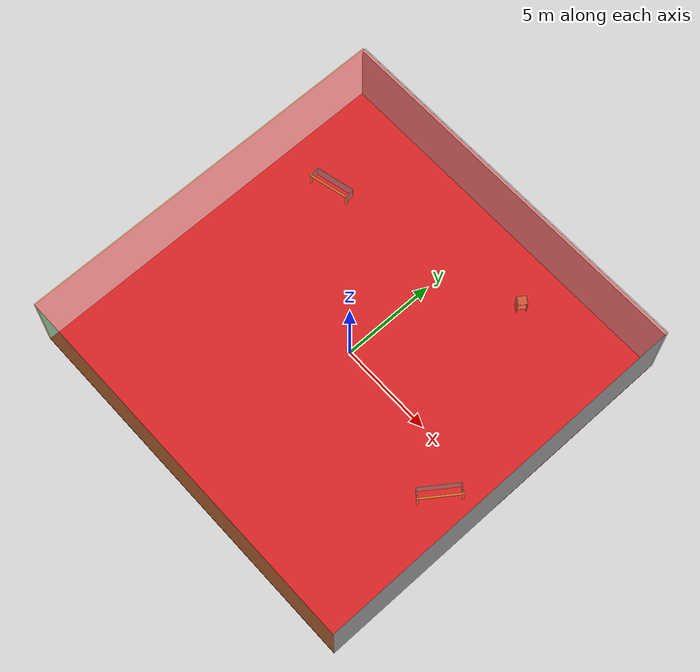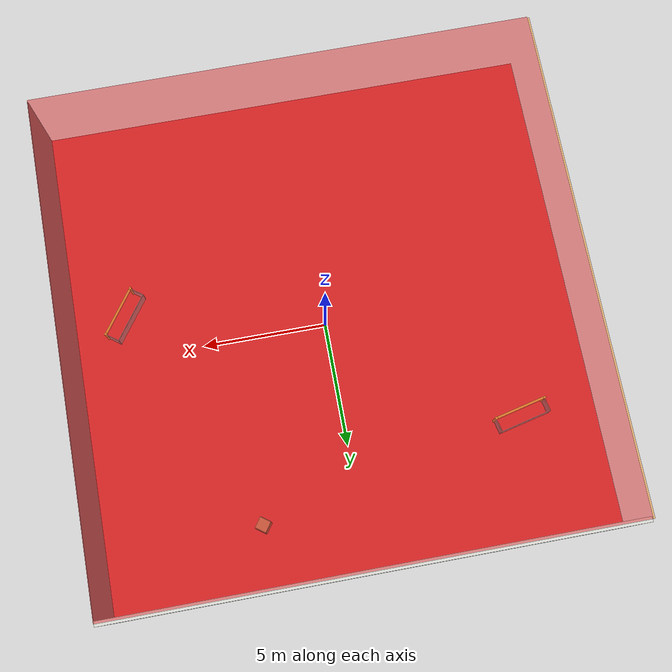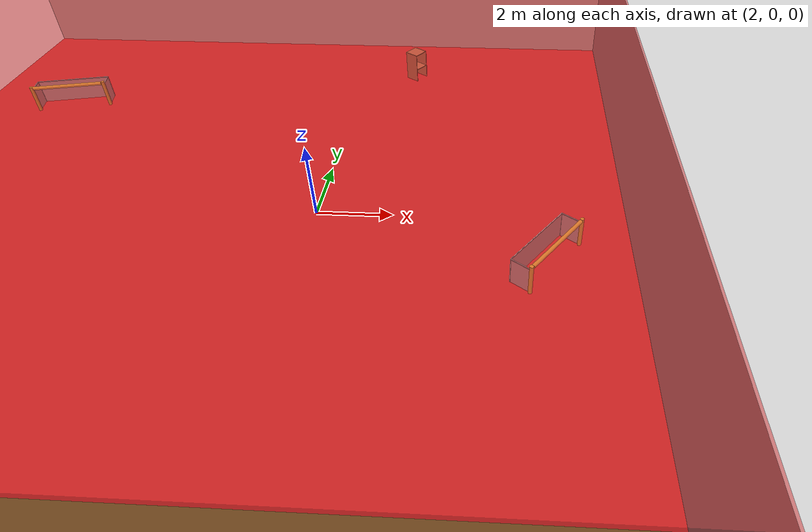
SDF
<sdf version="1.4">
 <world name="default">
  <physics type="ode">
   <max_step_size>0.001</max_step_size>
   <real_time_factor>1</real_time_factor>
   <real_time_update_rate>1000</real_time_update_rate>
   <gravity>0 0 -9.8</gravity>
  </physics>
  <scene><ambient>0.4 0.4 0.4 1</ambient><background>0.7 0.7 0.7 1</background><shadows>1</shadows></scene>
  <model name="Surrounding">
   <static>1</static>
   <link name="Ceiling">
    <collision name="Ceiling_Collision"><geometry><box><size>20 20 0.1</size></box></geometry></collision>
    <visual name="Ceiling_Visual">
     <geometry><box><size>20 20 0.1</size></box></geometry>
     <material>
      <script><uri>file://media/materials/scripts/gazebo.material</uri><name>Gazebo/RedTransparent</name></script>
     </material>
    </visual>
    <pose>0 0 4.05 0 0 0</pose>
   </link>
   <link name="Wall_South">
    <collision name="Wall_South_Collision">
     <geometry><box><size>20 0 4</size></box></geometry>
     <pose>0 0 2 0 -0 0</pose>
    </collision>
    <visual name="Wall_South_Visual">
     <pose>0 0 2 0 -0 0</pose>
     <geometry><box><size>20 0 4</size></box></geometry>
     <material>
      <script><uri>file://media/materials/scripts/gazebo.material</uri><name>Gazebo/GreenTransparent</name></script>
     </material>
    </visual>
    <velocity_decay><linear>0</linear><angular>0</angular></velocity_decay>
    <pose>0 -10 0 0 -0 0</pose>
   </link>
   <link name="Wall_East">
    <collision name="Wall_21_Collision">
     <geometry><box><size>20 0 4</size></box></geometry>
     <pose>0 0 2 0 -0 0</pose>
    </collision>
    <visual name="Wall_21_Visual">
     <pose>0 0 2 0 -0 0</pose>
     <geometry><box><size>20 0 4</size></box></geometry>
     <material>
      <script><uri>file://media/materials/scripts/gazebo.material</uri><name>Gazebo/CloudySky</name></script>
     </material>
    </visual>
    <velocity_decay><linear>0</linear><angular>0</angular></velocity_decay>
    <pose>10 0 0 0 -0 1.5708</pose>
   </link>
   <link name="Wall_North">
    <collision name="Wall_22_Collision">
     <geometry><box><size>20 0.2 4</size></box></geometry>
     <pose>0 0 2 0 -0 0</pose>
    </collision>
    <visual name="Wall_22_Visual">
     <pose>0 0 2 0 -0 0</pose>
     <geometry><box><size>20 0.2 4</size></box></geometry>
     <material>
      <script><uri>file://media/materials/scripts/gazebo.material</uri><name>Gazebo/CeilingTiled</name></script>
     </material>
    </visual>
    <velocity_decay><linear>0</linear><angular>0</angular></velocity_decay>
    <pose>0 10 0 0 -0 0</pose>
   </link>
   <link name="Wall_West">
    <collision name="Wall_23_Collision">
     <geometry><box><size>20 0.2 4</size></box></geometry>
     <pose>0 0 2 0 -0 0</pose>
    </collision>
    <visual name="Wall_23_Visual">
     <pose>0 0 2 0 -0 0</pose>
     <geometry><box><size>20 0.2 4</size></box></geometry>
     <material>
      <script>
       <uri>file://media/materials/scripts/gazebo.material</uri>
       <name>Gazebo/OrangeTransparent</name>
      </script>
     </material>
    </visual>
    <velocity_decay><linear>0</linear><angular>0</angular></velocity_decay>
    <pose>-10 0 0 0 0 -1.5708</pose>
   </link>
   <link name="Ground_link">
    <collision name="collision">
     <pose>0 0 .05 0 -0 0</pose>
     <geometry><box><size>20 20 0.1</size></box></geometry>
    </collision>
    <visual name="visual">
     <pose>0 0 .05 0 -0 0</pose>
     <geometry><box><size>20 20 0.1</size></box></geometry>
     <material>
      <script><uri>file://media/materials/scripts/gazebo.material</uri><name>Gazebo/RedGlow</name></script>
     </material>
    </visual>
   </link>
   <static>1</static>
  </model>
  <spherical_coordinates>
   <surface_model>EARTH_WGS84</surface_model>
   <latitude_deg>0</latitude_deg>
   <longitude_deg>0</longitude_deg>
   <elevation>0</elevation>
   <heading_deg>0</heading_deg>
  </spherical_coordinates>
  <light name="lightball_0" type="diffuse">
   <diffuse>0.8 0.8 0.8 1</diffuse>
   <specular>0.2 0.2 0.2 1</specular>
   <attenuation>
    <range>100</range>
    <constant>0.7</constant>
    <linear>0.01</linear>
    <quadratic>0.001</quadratic>
   </attenuation>
   <direction>-0.5 0.1 -0.9</direction>
   <pose>9.84119509532 -6.56863578652 2.29214710529 0 0 0</pose>
  </light>
  <light name="lightball_1" type="diffuse">
   <diffuse>0.8 0.8 0.8 1</diffuse>
   <specular>0.2 0.2 0.2 1</specular>
   <attenuation>
    <range>100</range>
    <constant>0.7</constant>
    <linear>0.01</linear>
    <quadratic>0.001</quadratic>
   </attenuation>
   <direction>-0.5 0.1 -0.9</direction>
   <pose>-6.23186001898 6.34792449829 1.1876546883 0 0 0</pose>
  </light>
  <light name="lightball_2" type="diffuse">
   <diffuse>0.8 0.8 0.8 1</diffuse>
   <specular>0.2 0.2 0.2 1</specular>
   <attenuation>
    <range>100</range>
    <constant>0.7</constant>
    <linear>0.01</linear>
    <quadratic>0.001</quadratic>
   </attenuation>
   <direction>-0.5 0.1 -0.9</direction>
   <pose>-0.0406130120697 -3.55373676123 3.30094477397 0 0 0</pose>
  </light>
  <light name="lightball_3" type="diffuse">
   <diffuse>0.8 0.8 0.8 1</diffuse>
   <specular>0.2 0.2 0.2 1</specular>
   <attenuation>
    <range>100</range>
    <constant>0.7</constant>
    <linear>0.01</linear>
    <quadratic>0.001</quadratic>
   </attenuation>
   <direction>-0.5 0.1 -0.9</direction>
   <pose>7.49738052268 -5.63074412783 3.13074431745 0 0 0</pose>
  </light>
  <light name="lightball_4" type="diffuse">
   <diffuse>0.8 0.8 0.8 1</diffuse>
   <specular>0.2 0.2 0.2 1</specular>
   <attenuation>
    <range>100</range>
    <constant>0.7</constant>
    <linear>0.01</linear>
    <quadratic>0.001</quadratic>
   </attenuation>
   <direction>-0.5 0.1 -0.9</direction>
   <pose>-8.05211015819 2.78523062314 2.61526026092 0 0 0</pose>
  </light>
  <light name="lightball_5" type="diffuse">
   <diffuse>0.8 0.8 0.8 1</diffuse>
   <specular>0.2 0.2 0.2 1</specular>
   <attenuation>
    <range>100</range>
    <constant>0.7</constant>
    <linear>0.01</linear>
    <quadratic>0.001</quadratic>
   </attenuation>
   <direction>-0.5 0.1 -0.9</direction>
   <pose>-4.10736213297 3.48760458864 1.54265892329 0 0 0</pose>
  </light>
  <light name="lightball_6" type="diffuse">
   <diffuse>0.8 0.8 0.8 1</diffuse>
   <specular>0.2 0.2 0.2 1</specular>
   <attenuation>
    <range>100</range>
    <constant>0.7</constant>
    <linear>0.01</linear>
    <quadratic>0.001</quadratic>
   </attenuation>
   <direction>-0.5 0.1 -0.9</direction>
   <pose>-7.95237083792 4.19197677723 3.31040302103 0 0 0</pose>
  </light>
  <light name="lightball_7" type="diffuse">
   <diffuse>0.8 0.8 0.8 1</diffuse>
   <specular>0.2 0.2 0.2 1</specular>
   <attenuation>
    <range>100</range>
    <constant>0.7</constant>
    <linear>0.01</linear>
    <quadratic>0.001</quadratic>
   </attenuation>
   <direction>-0.5 0.1 -0.9</direction>
   <pose>-8.4855727561 -9.3313468776 2.70848811343 0 0 0</pose>
  </light>
  <light name="lightball_8" type="diffuse">
   <diffuse>0.8 0.8 0.8 1</diffuse>
   <specular>0.2 0.2 0.2 1</specular>
   <attenuation>
    <range>100</range>
    <constant>0.7</constant>
    <linear>0.01</linear>
    <quadratic>0.001</quadratic>
   </attenuation>
   <direction>-0.5 0.1 -0.9</direction>
   <pose>-9.67508646114 -7.47590640465 2.88216336076 0 0 0</pose>
  </light>
  <light name="lightball_9" type="diffuse">
   <diffuse>0.8 0.8 0.8 1</diffuse>
   <specular>0.2 0.2 0.2 1</specular>
   <attenuation>
    <range>100</range>
    <constant>0.7</constant>
    <linear>0.01</linear>
    <quadratic>0.001</quadratic>
   </attenuation>
   <direction>-0.5 0.1 -0.9</direction>
   <pose>-0.965792188351 -4.96006468848 1.70757156821 0 0 0</pose>
  </light>
  <light name="lightball_10" type="diffuse">
   <diffuse>0.8 0.8 0.8 1</diffuse>
   <specular>0.2 0.2 0.2 1</specular>
   <attenuation>
    <range>100</range>
    <constant>0.7</constant>
    <linear>0.01</linear>
    <quadratic>0.001</quadratic>
   </attenuation>
   <direction>-0.5 0.1 -0.9</direction>
   <pose>-0.418154203758 9.27640278632 1.72338670826 0 0 0</pose>
  </light>
  <light name="lightball_11" type="diffuse">
   <diffuse>0.8 0.8 0.8 1</diffuse>
   <specular>0.2 0.2 0.2 1</specular>
   <attenuation>
    <range>100</range>
    <constant>0.7</constant>
    <linear>0.01</linear>
    <quadratic>0.001</quadratic>
   </attenuation>
   <direction>-0.5 0.1 -0.9</direction>
   <pose>-0.842626187868 -6.56165579596 3.87828011355 0 0 0</pose>
  </light>
  <include>
   <uri>model://robocup_3Dsim_goal</uri>
   <pose>-6.91423232864 4.86899506769 0 0 0 1.79881917568</pose>
  </include>
  <include><uri>model://cabinet</uri><pose>3.79065951808 7.51228007109 0 0 0 2.5233316336</pose></include>
  <include>
   <uri>model://robocup_3Dsim_goal</uri>
   <pose>8.11694868428 -1.85933252696 0 0 0 2.51979912323</pose>
  </include>
 </world>
</sdf>

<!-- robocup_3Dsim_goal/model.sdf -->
<sdf version="1.5">
  <model name="robocup_3d_goal">
    <static>true</static>
    <link name="left_post">
      <pose>0 1.05 0.45 0 0 0</pose>
      <collision name="collision">
        <geometry>
          <cylinder>
            <radius>0.05</radius>
            <length>0.9</length>
          </cylinder>
        </geometry>
      </collision>
      <visual name="visual">
        <geometry>
          <cylinder>
            <radius>0.05</radius>
            <length>0.9</length>
          </cylinder>
        </geometry>
        <material>
          <script>
            <uri>file://media/materials/scripts/gazebo.material</uri>
            <name>Gazebo/ZincYellow</name>
          </script>
        </material>
      </visual>
    </link>
    <link name="left_support_horiz_lower">
      <pose>0.30 1.05 0.01 0 0 0</pose>
      <collision name="collision">
        <geometry>
          <box>
            <size>0.50 0.02 0.02</size>
          </box>
        </geometry>
      </collision>
      <visual name="visual">
        <geometry>
          <box>
            <size>0.50 0.02 0.02</size>
          </box>
        </geometry>
        <material>
          <script>
            <uri>file://media/materials/scripts/gazebo.material</uri>
            <name>Gazebo/White</name>
          </script>
        </material>
      </visual>
    </link>
    <link name="left_support_horiz_upper">
      <pose>0.30 1.05 0.79 0 0 0</pose>
      <collision name="collision">
        <geometry>
          <box>
            <size>0.50 0.02 0.02</size>
          </box>
        </geometry>
      </collision>
      <visual name="visual">
        <geometry>
          <box>
            <size>0.50 0.02 0.02</size>
          </box>
        </geometry>
        <material>
          <script>
            <uri>file://media/materials/scripts/gazebo.material</uri>
            <name>Gazebo/White</name>
          </script>
        </material>
      </visual>
    </link>
    <link name="left_support_vertical">
      <pose>0.56 1.05 0.4 0 1.5708 0</pose>
      <collision name="collision">
        <geometry>
          <box>
            <size>0.80 0.02 0.02</size>
          </box>
        </geometry>
      </collision>
      <visual name="visual">
        <geometry>
          <box>
            <size>0.80 0.02 0.02</size>
          </box>
        </geometry>
        <material>
          <script>
            <uri>file://media/materials/scripts/gazebo.material</uri>
            <name>Gazebo/White</name>
          </script>
        </material>
      </visual>
    </link>
    <link name="right_support_horiz_lower">
      <pose>0.30 -1.05 0.01 0 0 0</pose>
      <collision name="collision">
        <geometry>
          <box>
            <size>0.50 0.02 0.02</size>
          </box>
        </geometry>
      </collision>
      <visual name="visual">
        <geometry>
          <box>
            <size>0.50 0.02 0.02</size>
          </box>
        </geometry>
        <material>
          <script>
            <uri>file://media/materials/scripts/gazebo.material</uri>
            <name>Gazebo/White</name>
          </script>
        </material>
      </visual>
    </link>
    <link name="right_support_horiz_upper">
      <pose>0.30 -1.05 0.79 0 0 0</pose>
      <collision name="collision">
        <geometry>
          <box>
            <size>0.50 0.02 0.02</size>
          </box>
        </geometry>
      </collision>
      <visual name="visual">
        <geometry>
          <box>
            <size>0.50 0.02 0.02</size>
          </box>
        </geometry>
        <material>
          <script>
            <uri>file://media/materials/scripts/gazebo.material</uri>
            <name>Gazebo/White</name>
          </script>
        </material>
      </visual>
    </link>
    <link name="right_support_vertical">
      <pose>0.56 -1.05 0.4 0 1.5708 0</pose>
      <collision name="collision">
        <geometry>
          <box>
            <size>0.80 0.02 0.02</size>
          </box>
        </geometry>
      </collision>
      <visual name="visual">
        <geometry>
          <box>
            <size>0.80 0.02 0.02</size>
          </box>
        </geometry>
        <material>
          <script>
            <uri>file://media/materials/scripts/gazebo.material</uri>
            <name>Gazebo/White</name>
          </script>
        </material>
      </visual>
    </link>
    <link name="center_support_horiz_lower">
      <pose>0.56 0 0.01 0 1.5708 0</pose>
      <collision name="collision">
        <geometry>
          <box>
            <size>0.02 2.08 0.02</size>
          </box>
        </geometry>
      </collision>
      <visual name="visual">
        <geometry>
          <box>
            <size>0.02 2.08 0.02</size>
          </box>
        </geometry>
        <material>
          <script>
            <uri>file://media/materials/scripts/gazebo.material</uri>
            <name>Gazebo/White</name>
          </script>
        </material>
      </visual>
    </link>
    <link name="center_support_horiz_upper">
      <pose>0.56 0 0.79 0 1.5708 0</pose>
      <collision name="collision">
        <geometry>
          <box>
            <size>0.02 2.08 0.02</size>
          </box>
        </geometry>
      </collision>
      <visual name="visual">
        <geometry>
          <box>
            <size>0.02 2.08 0.02</size>
          </box>
        </geometry>
        <material>
          <script>
            <uri>file://media/materials/scripts/gazebo.material</uri>
            <name>Gazebo/White</name>
          </script>
        </material>
      </visual>
    </link>
    <link name="right_post">
      <pose>0 -1.05 0.45 0 0 0</pose>
      <collision name="collision">
        <geometry>
          <cylinder>
            <radius>0.05</radius>
            <length>0.9</length>
          </cylinder>
        </geometry>
      </collision>
      <visual name="visual">
        <geometry>
          <cylinder>
            <radius>0.05</radius>
            <length>0.9</length>
          </cylinder>
        </geometry>
        <material>
          <script>
            <uri>file://media/materials/scripts/gazebo.material</uri>
            <name>Gazebo/ZincYellow</name>
          </script>
        </material>
      </visual>
    </link>
    <link name="crossbar">
      <pose>0 0 0.85 1.57 1.57 0</pose>
      <collision name="collision">
        <geometry>
          <cylinder>
            <radius>0.05</radius>
            <length>2.0</length>
          </cylinder>
        </geometry>
      </collision>
      <visual name="visual">
        <geometry>
          <cylinder>
            <radius>0.05</radius>
            <length>2.0</length>
          </cylinder>
        </geometry>
        <material>
          <script>
            <uri>file://media/materials/scripts/gazebo.material</uri>
            <name>Gazebo/ZincYellow</name>
          </script>
        </material>
      </visual>
    </link>
    <link name="center_net">
      <pose>0.56 0 0.40 0 0 0</pose>
      <collision name="collision">
        <geometry>
          <box>
            <size>0.01 2.1 0.80</size>
          </box>
        </geometry>
      </collision>
      <visual name="visual">
        <geometry>
          <box>
            <size>0.01 2.1 0.80</size>
          </box>
        </geometry>
        <material>
          <script>
            <uri>model://../model_source/models/robocup09_spl_field/materials/scripts/</uri>
            <uri>model://../model_source/models/robocup09_spl_field/materials/textures/</uri>
            <name>RoboCup/Net</name>
          </script>
        </material>
      </visual>
    </link>
    <link name="left_net">
      <pose>0.30 1.05 0.40 0 0 0</pose>
      <collision name="collision">
        <geometry>
          <box>
            <size>0.50 0.01 0.76</size>
          </box>
        </geometry>
      </collision>
      <visual name="visual">
        <geometry>
          <box>
            <size>0.50 0.01 0.76</size>
          </box>
        </geometry>
        <material>
          <script>
            <uri>model://../model_source/models/robocup09_spl_field/materials/scripts/</uri>
            <uri>model://../model_source/models/robocup09_spl_field/materials/textures/</uri>
            <name>RoboCup/Net</name>
          </script>
        </material>
      </visual>
    </link>
    <link name="right_net">
      <pose>0.30 -1.05 0.40 0 0 0</pose>
      <collision name="collision">
        <geometry>
          <box>
            <size>0.50 0.01 0.76</size>
          </box>
        </geometry>
      </collision>
      <visual name="visual">
        <geometry>
          <box>
            <size>0.50 0.01 0.76</size>
          </box>
        </geometry>
        <material>
          <script>
            <uri>model://../model_source/models/robocup09_spl_field/materials/scripts/</uri>
            <uri>model://../model_source/models/robocup09_spl_field/materials/textures/</uri>
            <name>RoboCup/Net</name>
          </script>
        </material>
      </visual>
    </link>
  </model>
</sdf>

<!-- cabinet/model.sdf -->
<sdf version="1.5">
  <model name="cabinet">
    <static>true</static>
    <link name="cabinet_bottom_plate">
      <inertial>
        <pose>0 0 -1 0 0 0</pose>
        <inertia>
          <ixx>2.050000</ixx>
          <ixy>0</ixy>
          <ixz>0</ixz>
          <iyy>2.050000</iyy>
          <iyz>0</iyz>
          <izz>2.050000</izz>
        </inertia>
        <mass>25.000000</mass>
      </inertial>
      <collision name="cabinet_bottom_plate_geom">
        <pose>0 0 0.010000 0 0 0</pose>
        <geometry>
          <box>
            <size>0.450000 0.450000 0.020000</size>
          </box>
        </geometry>
      </collision>
      <visual name="cabinet_bottom_plate_geom_visual">
        <pose>0 0 0.010000 0 0 0</pose>
        <geometry>
          <box>
            <size>0.450000 0.450000 0.020000</size>
          </box>
        </geometry>
        <material>
          <script>
            <uri>model://media/materials/scripts/gazebo.material</uri>
            <name>Gazebo/Wood</name>
          </script>
        </material>
      </visual>
      <collision name="cabinet_bottom_plate_geom_cabinet_back_plate">
        <pose>0.235000 0 0.510000 0 0 0</pose>
        <geometry>
          <box>
            <size>0.020000 0.450000 1.020000</size>
          </box>
        </geometry>
      </collision>
      <visual name="cabinet_bottom_plate_geom_cabinet_back_plate_visual">
        <pose>0.235000 0 0.510000 0 0 0</pose>
        <geometry>
          <box>
            <size>0.020000 0.450000 1.020000</size>
          </box>
        </geometry>
        <material>
          <script>
            <uri>model://media/materials/scripts/gazebo.material</uri>
            <name>Gazebo/Wood</name>
          </script>
        </material>
      </visual>
      <collision name="cabinet_bottom_plate_geom_cabinet_left_plate">
        <pose>0 0.235000 0.510000 0 0 0</pose>
        <geometry>
          <box>
            <size>0.450000 0.020000 1.020000</size>
          </box>
        </geometry>
      </collision>
      <visual name="cabinet_bottom_plate_geom_cabinet_left_plate_visual">
        <pose>0 0.235000 0.510000 0 0 0</pose>
        <geometry>
          <box>
            <size>0.450000 0.020000 1.020000</size>
          </box>
        </geometry>
        <material>
          <script>
            <uri>model://media/materials/scripts/gazebo.material</uri>
            <name>Gazebo/Wood</name>
          </script>
        </material>
      </visual>
      <collision name="cabinet_bottom_plate_geom_cabinet_middle_plate">
        <pose>0 0 0.510000 0 0 0</pose>
        <geometry>
          <box>
            <size>0.450000 0.450000 0.020000</size>
          </box>
        </geometry>
      </collision>
      <visual name="cabinet_bottom_plate_geom_cabinet_middle_plate_visual">
        <pose>0 0 0.510000 0 0 0</pose>
        <geometry>
          <box>
            <size>0.450000 0.450000 0.020000</size>
          </box>
        </geometry>
        <material>
          <script>
            <uri>model://media/materials/scripts/gazebo.material</uri>
            <name>Gazebo/Wood</name>
          </script>
        </material>
      </visual>
      <collision name="cabinet_bottom_plate_geom_cabinet_right_plate">
        <pose>0 -0.235000 0.510000 0 0 0</pose>
        <geometry>
          <box>
            <size>0.450000 0.020000 1.020000</size>
          </box>
        </geometry>
      </collision>
      <visual name="cabinet_bottom_plate_geom_cabinet_right_plate_visual">
        <pose>0 -0.235000 0.510000 0 0 0</pose>
        <geometry>
          <box>
            <size>0.450000 0.020000 1.020000</size>
          </box>
        </geometry>
        <material>
          <script>
            <uri>model://media/materials/scripts/gazebo.material</uri>
            <name>Gazebo/Wood</name>
          </script>
        </material>
      </visual>
      <collision name="cabinet_bottom_plate_geom_cabinet_top_plate">
        <pose>0 0 1.010000 0 0 0</pose>
        <geometry>
          <box>
            <size>0.450000 0.450000 0.020000</size>
          </box>
        </geometry>
      </collision>
      <visual name="cabinet_bottom_plate_geom_cabinet_top_plate_visual">
        <pose>0 0 1.010000 0 0 0</pose>
        <geometry>
          <box>
            <size>0.450000 0.450000 0.020000</size>
          </box>
        </geometry>
        <material>
          <script>
            <uri>model://media/materials/scripts/gazebo.material</uri>
            <name>Gazebo/Wood</name>
          </script>
        </material>
      </visual>
    </link>
  </model>
</sdf>
